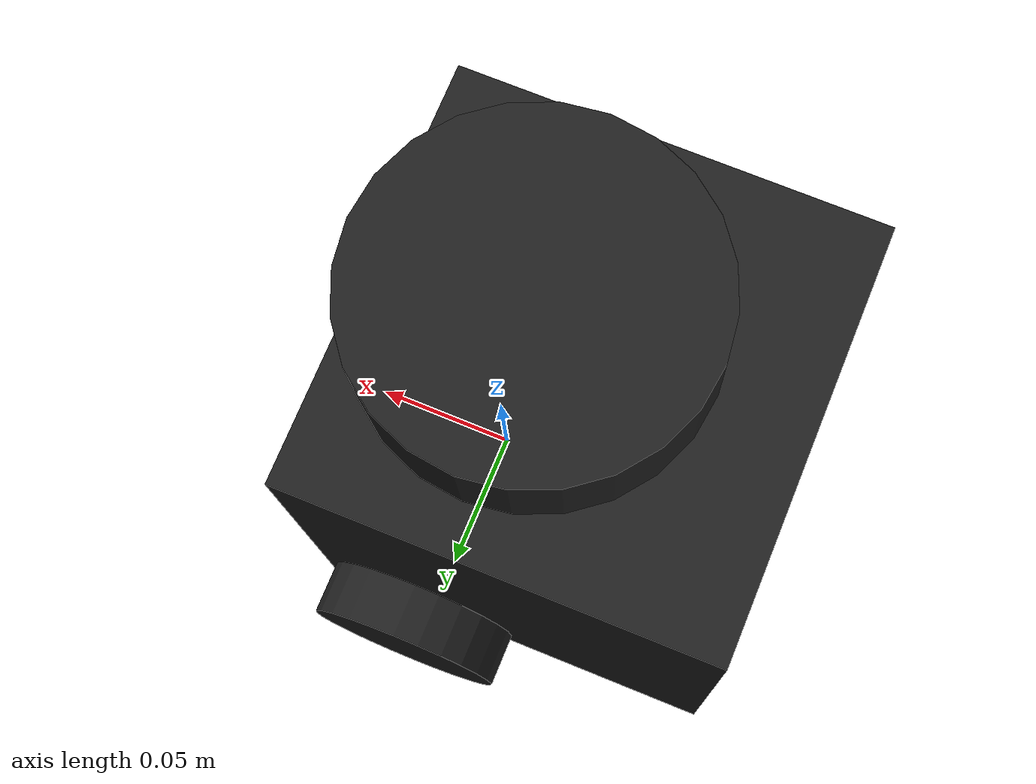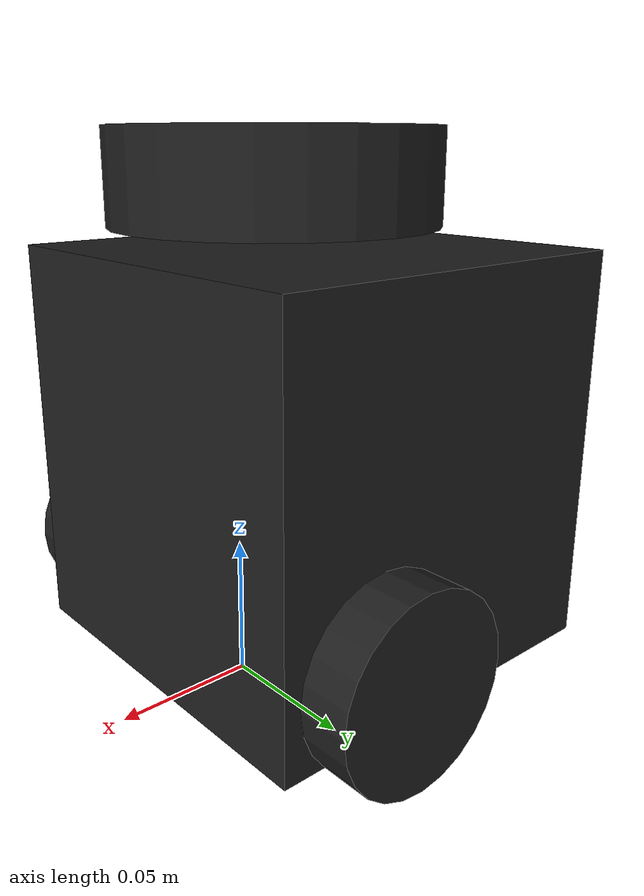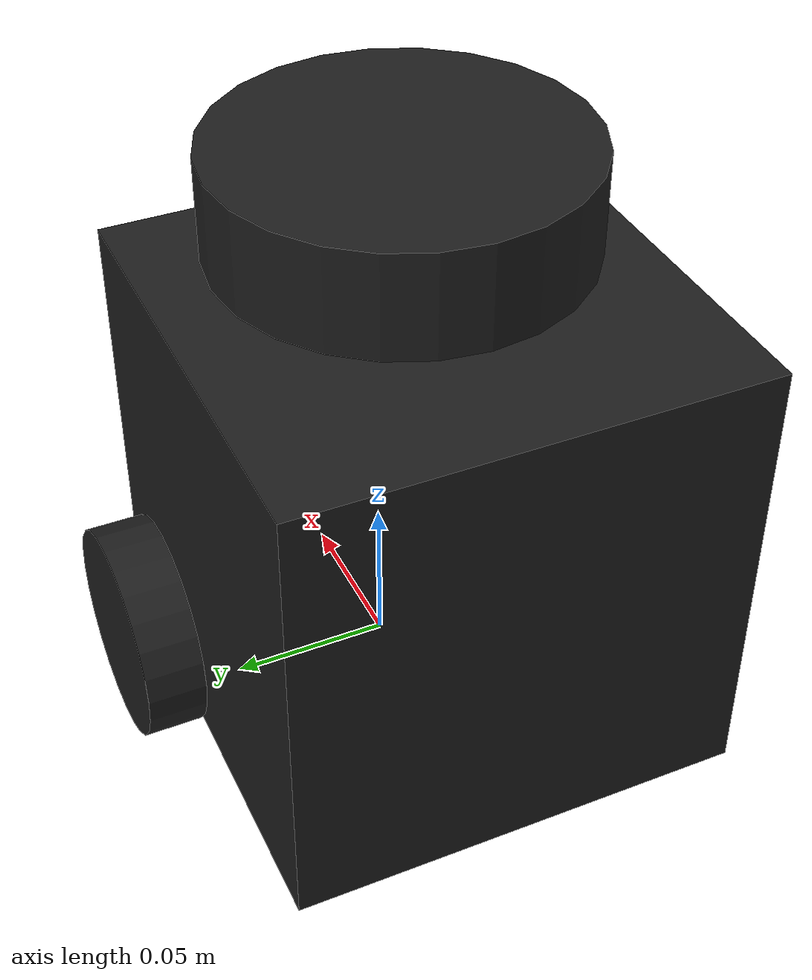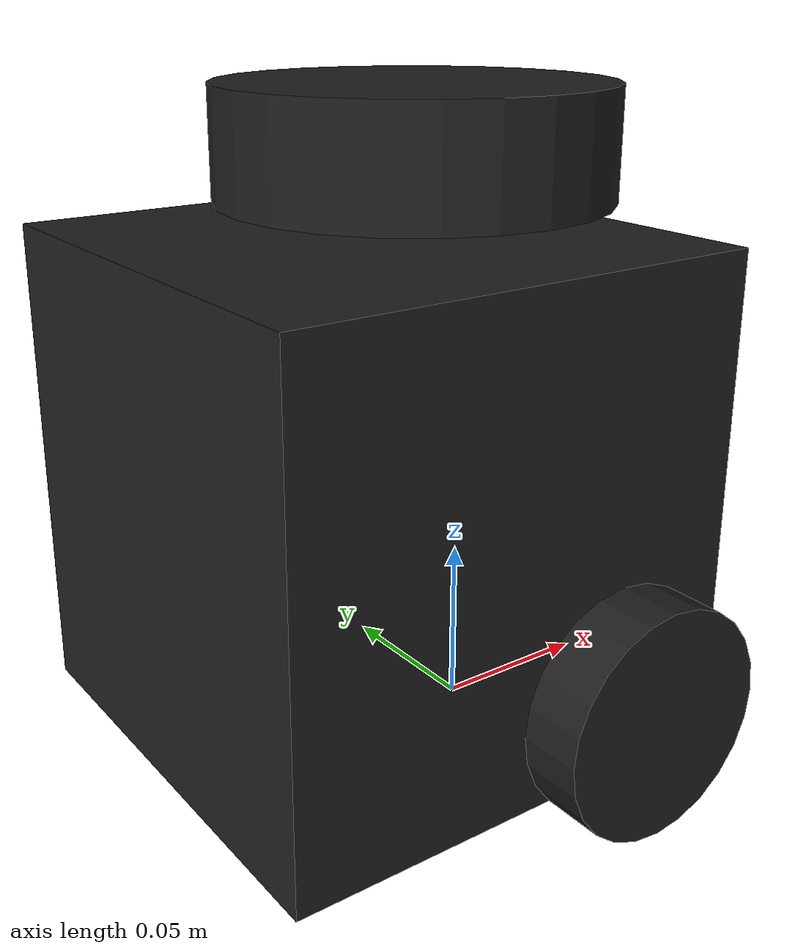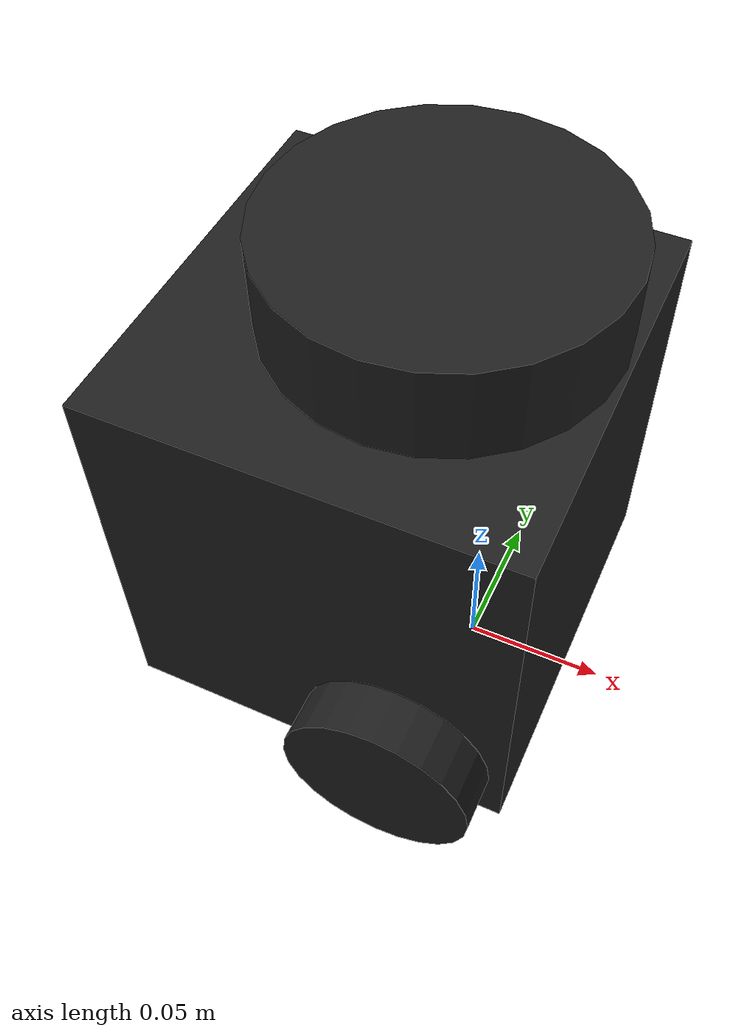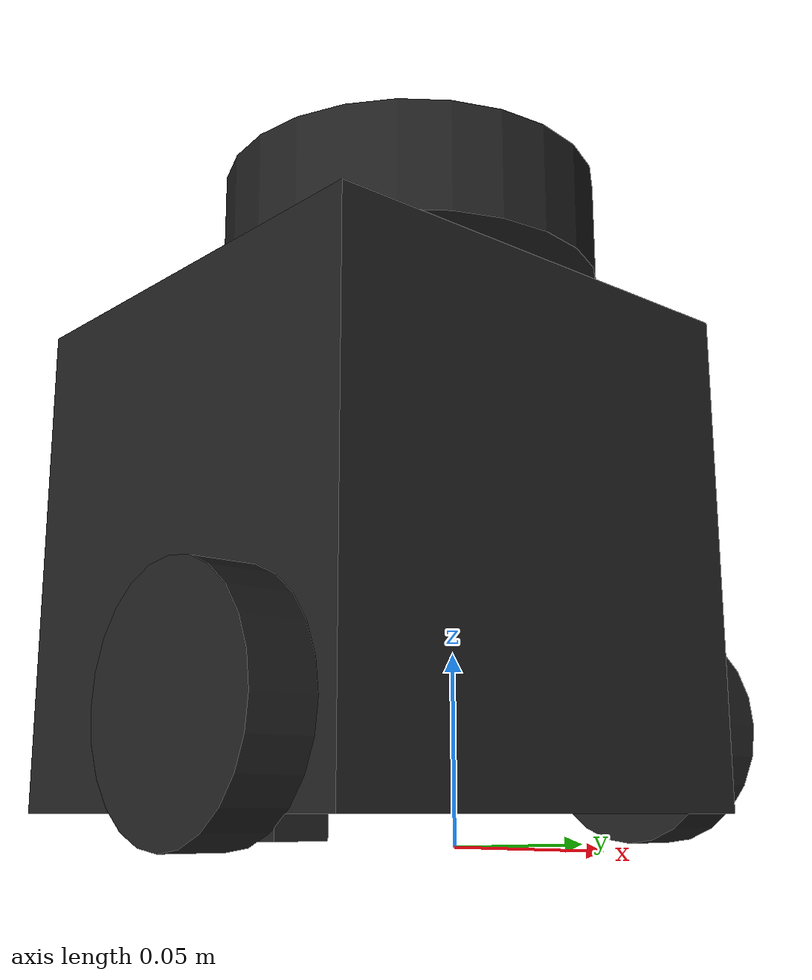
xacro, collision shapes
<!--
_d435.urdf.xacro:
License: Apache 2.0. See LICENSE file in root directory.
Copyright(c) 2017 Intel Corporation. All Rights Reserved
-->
<?xml version="1.0" ?>
<robot name="turtlebot3_burger" xmlns:xacro="http://ros.org/wiki/xacro">
  <xacro:arg name="camera_topic_ns" default="camera"/>

  <xacro:include filename="$(find turtlebot3_description)/urdf/common_properties.xacro"/>
  <xacro:include filename="$(find turtlebot3_description)/urdf/turtlebot3_burger.gazebo.xacro"/>

  <link name="base_footprint"/>

  <joint name="base_joint" type="fixed">
    <parent link="base_footprint"/>
    <child link="base_link"/>
    <origin xyz="0.0 0.0 0.010" rpy="0 0 0"/>
  </joint>

  <link name="base_link">
    <visual>
      <origin xyz="-0.032 0 0.0" rpy="0 0 0"/>
      <geometry>
        <mesh filename="package://turtlebot3_description/meshes/bases/burger_base.stl" scale="0.001 0.001 0.001"/>
      </geometry>
      <material name="light_black"/>
    </visual>

    <collision>
      <origin xyz="-0.032 0 0.070" rpy="0 0 0"/>
      <geometry>
        <box size="0.140 0.140 0.143"/>
      </geometry>
    </collision>

    <inertial>
      <origin xyz="0 0 0" rpy="0 0 0"/>
      <mass value="8.2573504e-01"/>
      <inertia ixx="2.2124416e-03" ixy="-1.2294101e-05" ixz="3.4938785e-05"
               iyy="2.1193702e-03" iyz="-5.0120904e-06"
               izz="2.0064271e-03" />
    </inertial>
  </link>

  <joint name="wheel_left_joint" type="continuous">
    <parent link="base_link"/>
    <child link="wheel_left_link"/>
    <origin xyz="0.0 0.08 0.023" rpy="-1.57 0 0"/>
    <axis xyz="0 0 1"/>
  </joint>

  <link name="wheel_left_link">
    <visual>
      <origin xyz="0 0 0" rpy="1.57 0 0"/>
      <geometry>
        <mesh filename="package://turtlebot3_description/meshes/wheels/left_tire.stl" scale="0.001 0.001 0.001"/>
      </geometry>
      <material name="dark"/>
    </visual>

    <collision>
      <origin xyz="0 0 0" rpy="0 0 0"/>
      <geometry>
        <cylinder length="0.018" radius="0.033"/>
      </geometry>
    </collision>

    <inertial>
      <origin xyz="0 0 0" />
      <mass value="2.8498940e-02" />
      <inertia ixx="1.1175580e-05" ixy="-4.2369783e-11" ixz="-5.9381719e-09"
               iyy="1.1192413e-05" iyz="-1.4400107e-11"
               izz="2.0712558e-05" />
      </inertial>
  </link>

  <joint name="wheel_right_joint" type="continuous">
    <parent link="base_link"/>
    <child link="wheel_right_link"/>
    <origin xyz="0.0 -0.080 0.023" rpy="-1.57 0 0"/>
    <axis xyz="0 0 1"/>
  </joint>

  <link name="wheel_right_link">
    <visual>
      <origin xyz="0 0 0" rpy="1.57 0 0"/>
      <geometry>
        <mesh filename="package://turtlebot3_description/meshes/wheels/right_tire.stl" scale="0.001 0.001 0.001"/>
      </geometry>
      <material name="dark"/>
    </visual>

    <collision>
      <origin xyz="0 0 0" rpy="0 0 0"/>
      <geometry>
        <cylinder length="0.018" radius="0.033"/>
      </geometry>
    </collision>

    <inertial>
      <origin xyz="0 0 0" />
      <mass value="2.8498940e-02" />
      <inertia ixx="1.1175580e-05" ixy="-4.2369783e-11" ixz="-5.9381719e-09"
               iyy="1.1192413e-05" iyz="-1.4400107e-11"
               izz="2.0712558e-05" />
      </inertial>
  </link>

  <joint name="caster_back_joint" type="fixed">
    <parent link="base_link"/>
    <child link="caster_back_link"/>
    <origin xyz="-0.081 0 -0.004" rpy="-1.57 0 0"/>
  </joint>

  <link name="caster_back_link">
    <collision>
      <origin xyz="0 0.001 0" rpy="0 0 0"/>
      <geometry>
        <box size="0.030 0.009 0.020"/>
      </geometry>
    </collision>

    <inertial>
      <origin xyz="0 0 0" />
      <mass value="0.005" />
      <inertia ixx="0.001" ixy="0.0" ixz="0.0"
               iyy="0.001" iyz="0.0"
               izz="0.001" />
    </inertial>
  </link>

  <joint name="imu_joint" type="fixed">
    <parent link="base_link"/>
    <child link="imu_link"/>
    <origin xyz="-0.032 0 0.068" rpy="0 0 0"/>
  </joint>

  <link name="imu_link"/>

  <joint name="scan_joint" type="fixed">
    <parent link="base_link"/>
    <child link="base_scan"/>
    <origin xyz="-0.032 0 0.172" rpy="0 0 0"/>
  </joint>

  <link name="base_scan">
    <visual>
      <origin xyz="0 0 0.0" rpy="0 0 0"/>
      <geometry>
        <mesh filename="package://turtlebot3_description/meshes/sensors/lds.stl" scale="0.001 0.001 0.001"/>
      </geometry>
      <material name="dark"/>
    </visual>

    <collision>
      <origin xyz="0.015 0 -0.0065" rpy="0 0 0"/>
      <geometry>
        <cylinder length="0.0315" radius="0.055"/>
      </geometry>
    </collision>

    <inertial>
      <mass value="0.114" />
      <origin xyz="0 0 0" />
      <inertia ixx="0.001" ixy="0.0" ixz="0.0"
               iyy="0.001" iyz="0.0"
               izz="0.001" />
    </inertial>
  </link>

  <xacro:include filename="$(find realsense2_description)/urdf/_d435.urdf.xacro" />

  <joint name="camera_joint" type="fixed">
    <origin xyz="0.0 0 0.1" rpy="0 0 0"/>
    <parent link="base_link"/>
    <child link="camera_link"/>
  </joint>

  <link name="camera_link">
    <collision>
      <origin xyz="0.00 0 0" rpy="0 0 0"/>
      <geometry>
        <box size="0 0 0"/>
      </geometry>
    </collision>
  </link>

  <xacro:sensor_d435 parent="camera_link" name="$(arg camera_topic_ns)_camera" topics_ns="$(arg camera_topic_ns)">
      <origin xyz="0 0 0" rpy="0 0 0"/>
  </xacro:sensor_d435>

</robot>

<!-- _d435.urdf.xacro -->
<robot name="sensor_d435" xmlns:xacro="http://ros.org/wiki/xacro">
  <!--File includes-->
  <xacro:include filename="$(find realsense2_description)/urdf/_d435.gazebo.xacro"/>

  <xacro:macro name="sensor_d435" params="name:=camera topics_ns:=camera parent *origin publish_pointcloud:=true">
    <xacro:property name="M_PI" value="3.1415926535897931" />

    <!-- The following values are approximate, and the camera node
     publishing TF values with actual calibrated camera extrinsic values -->
    <xacro:property name="d435_cam_depth_to_left_ir_offset" value="0.0"/>
    <xacro:property name="d435_cam_depth_to_right_ir_offset" value="-0.050"/>
    <xacro:property name="d435_cam_depth_to_color_offset" value="0.015"/>

    <!-- The following values model the aluminum peripherial case for the
    D435 camera, with the camera joint represented by the actual
    peripherial camera tripod mount -->
    <xacro:property name="d435_cam_width" value="0.090"/>
    <xacro:property name="d435_cam_height" value="0.025"/>
    <xacro:property name="d435_cam_depth" value="0.02505"/>
    <xacro:property name="d435_cam_mount_from_center_offset" value="0.0149"/>

    <!-- The following offset is relative the the physical D435 camera peripherial
    camera tripod mount -->
    <xacro:property name="d435_cam_depth_px" value="${d435_cam_mount_from_center_offset}"/>
    <xacro:property name="d435_cam_depth_py" value="0.0175"/>
    <xacro:property name="d435_cam_depth_pz" value="${d435_cam_height/2}"/>

    <material name="${name}_aluminum">
    <color rgba="0.5 0.5 0.5 1"/>
    </material>

    <!-- camera body, with origin at bottom screw mount -->
    <joint name="${name}_joint" type="fixed">
      <xacro:insert_block name="origin" />
      <parent link="${parent}"/>
      <child link="${name}_bottom_screw_frame" />
    </joint>
    <link name="${name}_bottom_screw_frame"/>

    <joint name="${name}_link_joint" type="fixed">
      <origin xyz="0 ${d435_cam_depth_py} ${d435_cam_depth_pz}" rpy="0 0 0"/>
      <parent link="${name}_bottom_screw_frame"/>
      <child link="${name}_link" />
    </joint>

    <link name="${name}_link">
      <visual>
      <origin xyz="${d435_cam_mount_from_center_offset} ${-d435_cam_depth_py} 0" rpy="${M_PI/2} 0 ${M_PI/2}"/>
        <geometry>
          <mesh filename="package://realsense2_description/meshes/d435.dae" />
        </geometry>
        <material name="${name}_aluminum"/>
      </visual>
      <collision>
        <origin xyz="0 ${-d435_cam_depth_py} 0" rpy="0 0 0"/>
        <geometry>
        <box size="${d435_cam_depth} ${d435_cam_width} ${d435_cam_height}"/>
        </geometry>
      </collision>
      <inertial>
        <!-- The following are not reliable values, and should not be used for modeling mass = 0.564 -->
        <mass value="0.564" />
        <origin xyz="0 0 0" />
        <inertia ixx="0.003881243" ixy="0.0" ixz="0.0" iyy="0.000498940" iyz="0.0" izz="0.003879257" />
      </inertial>
    </link>

    <!-- camera depth joints and links -->
    <joint name="${name}_depth_joint" type="fixed">
      <origin xyz="0 0 0" rpy="0 0 0"/>
      <parent link="${name}_link"/>
      <child link="${name}_depth_frame" />
    </joint>
    <link name="${name}_depth_frame"/>

    <joint name="${name}_depth_optical_joint" type="fixed">
      <origin xyz="0 0 0" rpy="${-M_PI/2} 0 ${-M_PI/2}" />
      <parent link="${name}_depth_frame" />
      <child link="${name}_depth_optical_frame" />
    </joint>
    <link name="${name}_depth_optical_frame"/>

    <!-- camera left IR joints and links -->
    <joint name="${name}_left_ir_joint" type="fixed">
      <origin xyz="0 ${d435_cam_depth_to_left_ir_offset} 0" rpy="0 0 0" />
      <parent link="${name}_depth_frame" />
      <child link="${name}_left_ir_frame" />
    </joint>
    <link name="${name}_left_ir_frame"/>

    <joint name="${name}_left_ir_optical_joint" type="fixed">
      <origin xyz="0 0 0" rpy="${-M_PI/2} 0 ${-M_PI/2}" />
      <parent link="${name}_left_ir_frame" />
      <child link="${name}_left_ir_optical_frame" />
    </joint>
    <link name="${name}_left_ir_optical_frame"/>

    <!-- camera right IR joints and links -->
    <joint name="${name}_right_ir_joint" type="fixed">
      <origin xyz="0 ${d435_cam_depth_to_right_ir_offset} 0" rpy="0 0 0" />
      <parent link="${name}_depth_frame" />
      <child link="${name}_right_ir_frame" />
    </joint>
    <link name="${name}_right_ir_frame"/>

    <joint name="${name}_right_ir_optical_joint" type="fixed">
      <origin xyz="0 0 0" rpy="${-M_PI/2} 0 ${-M_PI/2}" />
      <parent link="${name}_right_ir_frame" />
      <child link="${name}_right_ir_optical_frame" />
    </joint>
    <link name="${name}_right_ir_optical_frame"/>

    <!-- camera color joints and links -->
    <joint name="${name}_color_joint" type="fixed">
      <origin xyz="0 ${d435_cam_depth_to_color_offset} 0" rpy="0 0 0" />
      <parent link="${name}_depth_frame" />
      <child link="${name}_color_frame" />
    </joint>
    <link name="${name}_color_frame"/>

    <joint name="${name}_color_optical_joint" type="fixed">
      <origin xyz="0 0 0" rpy="${-M_PI/2} 0 ${-M_PI/2}" />
      <parent link="${name}_color_frame" />
      <child link="${name}_color_optical_frame" />
    </joint>
    <link name="${name}_color_optical_frame"/>

    <!-- Realsense Gazebo Plugin -->
    <xacro:gazebo_d435 camera_name="${name}" reference_link="${name}_link" topics_ns="${topics_ns}" depth_optical_frame="${name}_depth_optical_frame" color_optical_frame="${name}_color_optical_frame" infrared1_optical_frame="${name}_left_ir_optical_frame" infrared2_optical_frame="${name}_right_ir_optical_frame" publish_pointcloud="${publish_pointcloud}"/>

  </xacro:macro>
</robot>
